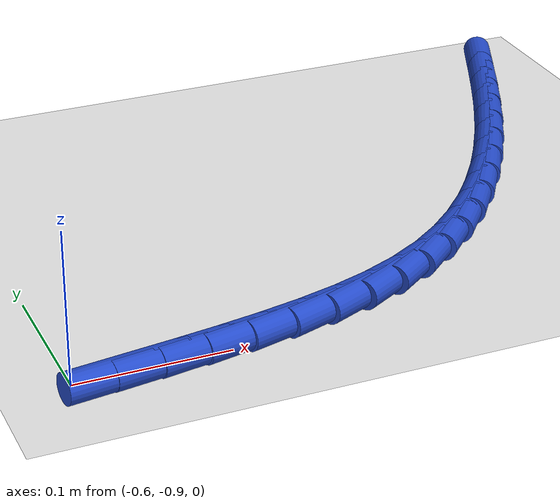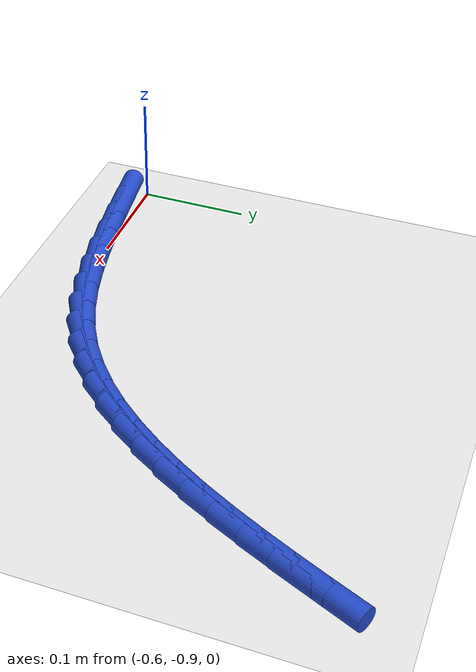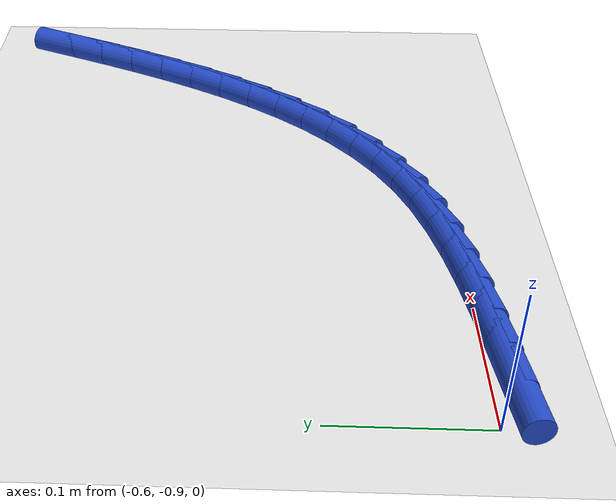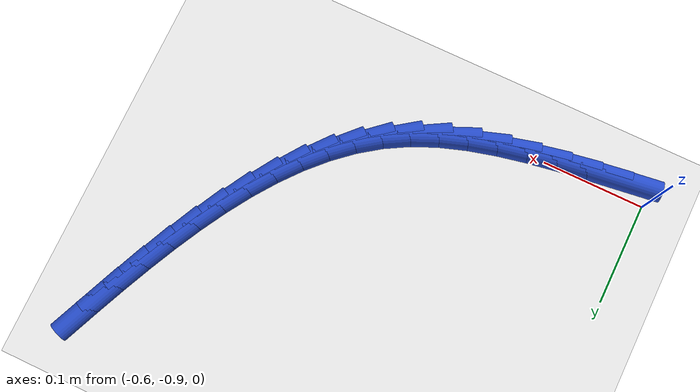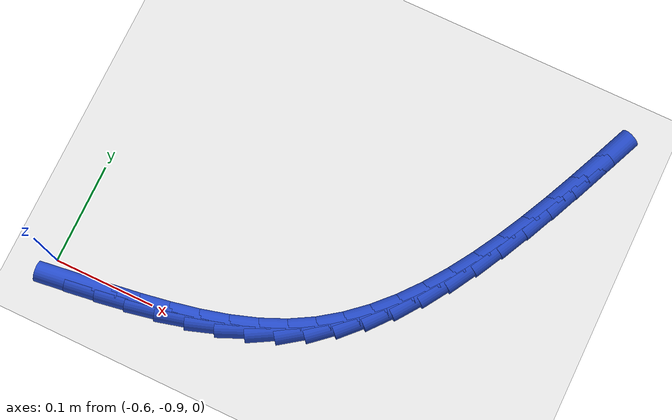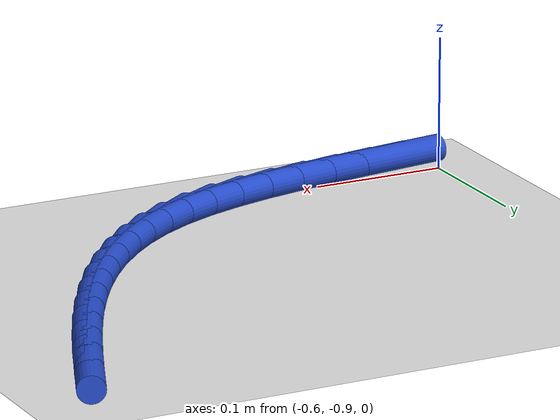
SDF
<sdf version="1.6">
 <world name="default">
  <model name="ground_plane">
   <static>1</static>
   <link name="link">
    <collision name="collision">
     <geometry><plane><normal>0 0 1</normal><size>100 100</size></plane></geometry>
     <surface><friction><ode><mu>100</mu><mu2>50</mu2></ode></friction></surface>
    </collision>
    <visual name="visual">
     <cast_shadows>0</cast_shadows>
     <geometry><plane><normal>0 0 1</normal><size>100 100</size></plane></geometry>
     <material>
      <script><uri>file://media/materials/scripts/gazebo.material</uri><name>Gazebo/WhiteGlow</name></script>
     </material>
    </visual>
   </link>
  </model>
  <model name="line">
   <link name="link_199">
    <pose>-0.5695499251497429 -0.9127546431144029 0.01 0 1.57 0.12974550518123326</pose>
    <collision name="collision">
     <geometry><cylinder><radius>0.01</radius><length>0.08</length></cylinder></geometry>
    </collision>
    <visual name="visual">
     <material>
      <script><name>Gazebo/Blue</name><uri>file://media/materials/scripts/gazebo.material</uri></script>
     </material>
     <geometry><cylinder><radius>0.01</radius><length>0.08</length></cylinder></geometry>
    </visual>
   </link>
   <link name="link_200">
    <pose>-0.5400931952460584 -0.9089111737147151 0.01 0 1.57 0.1431526670724873</pose>
    <collision name="collision">
     <geometry><cylinder><radius>0.01</radius><length>0.08</length></cylinder></geometry>
    </collision>
    <visual name="visual">
     <material>
      <script><name>Gazebo/Blue</name><uri>file://media/materials/scripts/gazebo.material</uri></script>
     </material>
     <geometry><cylinder><radius>0.01</radius><length>0.08</length></cylinder></geometry>
    </visual>
   </link>
   <link name="link_201">
    <pose>-0.5107793514595816 -0.9046859169998656 0.01 0 1.57 0.16628109295011811</pose>
    <collision name="collision">
     <geometry><cylinder><radius>0.01</radius><length>0.08</length></cylinder></geometry>
    </collision>
    <visual name="visual">
     <material>
      <script><name>Gazebo/Blue</name><uri>file://media/materials/scripts/gazebo.material</uri></script>
     </material>
     <geometry><cylinder><radius>0.01</radius><length>0.08</length></cylinder></geometry>
    </visual>
   </link>
   <link name="link_202">
    <pose>-0.4817753210395023 -0.8998181485780165 0.01 0 1.57 0.20310405405918422</pose>
    <collision name="collision">
     <geometry><cylinder><radius>0.01</radius><length>0.08</length></cylinder></geometry>
    </collision>
    <visual name="visual">
     <material>
      <script><name>Gazebo/Blue</name><uri>file://media/materials/scripts/gazebo.material</uri></script>
     </material>
     <geometry><cylinder><radius>0.01</radius><length>0.08</length></cylinder></geometry>
    </visual>
   </link>
   <link name="link_203">
    <pose>-0.4533512014710891 -0.893964380667204 0.01 0 1.57 0.25520333979471266</pose>
    <collision name="collision">
     <geometry><cylinder><radius>0.01</radius><length>0.08</length></cylinder></geometry>
    </collision>
    <visual name="visual">
     <material>
      <script><name>Gazebo/Blue</name><uri>file://media/materials/scripts/gazebo.material</uri></script>
     </material>
     <geometry><cylinder><radius>0.01</radius><length>0.08</length></cylinder></geometry>
    </visual>
   </link>
   <link name="link_204">
    <pose>-0.4257870688439707 -0.8867731206271157 0.01 0 1.57 0.32420839178747374</pose>
    <collision name="collision">
     <geometry><cylinder><radius>0.01</radius><length>0.08</length></cylinder></geometry>
    </collision>
    <visual name="visual">
     <material>
      <script><name>Gazebo/Blue</name><uri>file://media/materials/scripts/gazebo.material</uri></script>
     </material>
     <geometry><cylinder><radius>0.01</radius><length>0.08</length></cylinder></geometry>
    </visual>
   </link>
   <link name="link_205">
    <pose>-0.39936299924777585 -0.8778928758174388 0.01 0 1.57 0.4117893443366571</pose>
    <collision name="collision">
     <geometry><cylinder><radius>0.01</radius><length>0.08</length></cylinder></geometry>
    </collision>
    <visual name="visual">
     <material>
      <script><name>Gazebo/Blue</name><uri>file://media/materials/scripts/gazebo.material</uri></script>
     </material>
     <geometry><cylinder><radius>0.01</radius><length>0.08</length></cylinder></geometry>
    </visual>
   </link>
   <link name="link_206">
    <pose>-0.37435906877213326 -0.8669721535978615 0.01 0 1.57 0.5170141311781651</pose>
    <collision name="collision">
     <geometry><cylinder><radius>0.01</radius><length>0.08</length></cylinder></geometry>
    </collision>
    <visual name="visual">
     <material>
      <script><name>Gazebo/Blue</name><uri>file://media/materials/scripts/gazebo.material</uri></script>
     </material>
     <geometry><cylinder><radius>0.01</radius><length>0.08</length></cylinder></geometry>
    </visual>
   </link>
   <link name="link_207">
    <pose>-0.3510228999739399 -0.853703117763943 0.01 0 1.57 0.6232945901384488</pose>
    <collision name="collision">
     <geometry><cylinder><radius>0.01</radius><length>0.08</length></cylinder></geometry>
    </collision>
    <visual name="visual">
     <material>
      <script><name>Gazebo/Blue</name><uri>file://media/materials/scripts/gazebo.material</uri></script>
     </material>
     <geometry><cylinder><radius>0.01</radius><length>0.08</length></cylinder></geometry>
    </visual>
   </link>
   <link name="link_208">
    <pose>-0.32934732945727047 -0.8381206697325112 0.01 0 1.57 0.720920171232483</pose>
    <collision name="collision">
     <geometry><cylinder><radius>0.01</radius><length>0.08</length></cylinder></geometry>
    </collision>
    <visual name="visual">
     <material>
      <script><name>Gazebo/Blue</name><uri>file://media/materials/scripts/gazebo.material</uri></script>
     </material>
     <geometry><cylinder><radius>0.01</radius><length>0.08</length></cylinder></geometry>
    </visual>
   </link>
   <link name="link_209">
    <pose>-0.3092048807243259 -0.8204215558961011 0.01 0 1.57 0.8083519531110777</pose>
    <collision name="collision">
     <geometry><cylinder><radius>0.01</radius><length>0.08</length></cylinder></geometry>
    </collision>
    <visual name="visual">
     <material>
      <script><name>Gazebo/Blue</name><uri>file://media/materials/scripts/gazebo.material</uri></script>
     </material>
     <geometry><cylinder><radius>0.01</radius><length>0.08</length></cylinder></geometry>
    </visual>
   </link>
   <link name="link_210">
    <pose>-0.2904673656203906 -0.8008034799668926 0.01 0 1.57 0.8850299241049083</pose>
    <collision name="collision">
     <geometry><cylinder><radius>0.01</radius><length>0.08</length></cylinder></geometry>
    </collision>
    <visual name="visual">
     <material>
      <script><name>Gazebo/Blue</name><uri>file://media/materials/scripts/gazebo.material</uri></script>
     </material>
     <geometry><cylinder><radius>0.01</radius><length>0.08</length></cylinder></geometry>
    </visual>
   </link>
   <link name="link_211">
    <pose>-0.2730065959907497 -0.7794641456570646 0.01 0 1.57 0.9510806074639626</pose>
    <collision name="collision">
     <geometry><cylinder><radius>0.01</radius><length>0.08</length></cylinder></geometry>
    </collision>
    <visual name="visual">
     <material>
      <script><name>Gazebo/Blue</name><uri>file://media/materials/scripts/gazebo.material</uri></script>
     </material>
     <geometry><cylinder><radius>0.01</radius><length>0.08</length></cylinder></geometry>
    </visual>
   </link>
   <link name="link_212">
    <pose>-0.25669438368068886 -0.756601256678797 0.01 0 1.57 1.0070444477050573</pose>
    <collision name="collision">
     <geometry><cylinder><radius>0.01</radius><length>0.08</length></cylinder></geometry>
    </collision>
    <visual name="visual">
     <material>
      <script><name>Gazebo/Blue</name><uri>file://media/materials/scripts/gazebo.material</uri></script>
     </material>
     <geometry><cylinder><radius>0.01</radius><length>0.08</length></cylinder></geometry>
    </visual>
   </link>
   <link name="link_213">
    <pose>-0.241402540535493 -0.732412516744269 0.01 0 1.57 1.0536514025150516</pose>
    <collision name="collision">
     <geometry><cylinder><radius>0.01</radius><length>0.08</length></cylinder></geometry>
    </collision>
    <visual name="visual">
     <material>
      <script><name>Gazebo/Blue</name><uri>file://media/materials/scripts/gazebo.material</uri></script>
     </material>
     <geometry><cylinder><radius>0.01</radius><length>0.08</length></cylinder></geometry>
    </visual>
   </link>
   <link name="link_214">
    <pose>-0.22700287840044733 -0.7070956295656601 0.01 0 1.57 1.0916652625389056</pose>
    <collision name="collision">
     <geometry><cylinder><radius>0.01</radius><length>0.08</length></cylinder></geometry>
    </collision>
    <visual name="visual">
     <material>
      <script><name>Gazebo/Blue</name><uri>file://media/materials/scripts/gazebo.material</uri></script>
     </material>
     <geometry><cylinder><radius>0.01</radius><length>0.08</length></cylinder></geometry>
    </visual>
   </link>
   <link name="link_215">
    <pose>-0.213367209120837 -0.6808482988551496 0.01 0 1.57 1.1217883721172264</pose>
    <collision name="collision">
     <geometry><cylinder><radius>0.01</radius><length>0.08</length></cylinder></geometry>
    </collision>
    <visual name="visual">
     <material>
      <script><name>Gazebo/Blue</name><uri>file://media/materials/scripts/gazebo.material</uri></script>
     </material>
     <geometry><cylinder><radius>0.01</radius><length>0.08</length></cylinder></geometry>
    </visual>
   </link>
   <link name="link_216">
    <pose>-0.2003673445419478 -0.6538682283249179 0.01 0 1.57 1.1446092410736357</pose>
    <collision name="collision">
     <geometry><cylinder><radius>0.01</radius><length>0.08</length></cylinder></geometry>
    </collision>
    <visual name="visual">
     <material>
      <script><name>Gazebo/Blue</name><uri>file://media/materials/scripts/gazebo.material</uri></script>
     </material>
     <geometry><cylinder><radius>0.01</radius><length>0.08</length></cylinder></geometry>
    </visual>
   </link>
   <link name="link_217">
    <pose>-0.18787509650906467 -0.6263531216871442 0.01 0 1.57 1.1605764849368863</pose>
    <collision name="collision">
     <geometry><cylinder><radius>0.01</radius><length>0.08</length></cylinder></geometry>
    </collision>
    <visual name="visual">
     <material>
      <script><name>Gazebo/Blue</name><uri>file://media/materials/scripts/gazebo.material</uri></script>
     </material>
     <geometry><cylinder><radius>0.01</radius><length>0.08</length></cylinder></geometry>
    </visual>
   </link>
   <link name="link_218">
    <pose>-0.1757622768674727 -0.5985006826540077 0.01 0 1.57 1.1699867124946168</pose>
    <collision name="collision">
     <geometry><cylinder><radius>0.01</radius><length>0.08</length></cylinder></geometry>
    </collision>
    <visual name="visual">
     <material>
      <script><name>Gazebo/Blue</name><uri>file://media/materials/scripts/gazebo.material</uri></script>
     </material>
     <geometry><cylinder><radius>0.01</radius><length>0.08</length></cylinder></geometry>
    </visual>
   </link>
  </model>
 </world>
</sdf>
